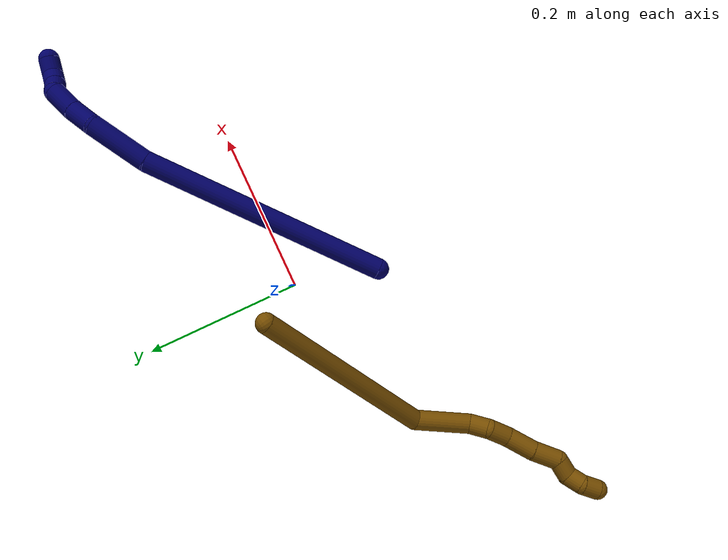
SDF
<sdf version="1.7">
 <world name="default">
  <model name="photoneo_s_sensor">
   <static>1</static>
   <pose>0 0 2 1.57079 1.57079 3.14159</pose>
   <link name="link">
    <inertial><mass>0.1</mass></inertial>
    <sensor name="sensor" type="depth">
     <update_rate>30</update_rate>
     <camera>
      <horizontal_fov>1.22</horizontal_fov>
      <image><width>1920</width><height>1200</height><format>B8G8R8</format></image>
      <clip><near>0.1</near><far>4</far></clip>
      <depth_camera><output>points</output></depth_camera>
     </camera>
     <plugin name="camera_plugin" filename="libgazebo_ros_depth_camera.so">
      <baseline>0.2</baseline>
      <alwaysOn>1</alwaysOn>
      <updateRate>0.0</updateRate>
      <cameraName>camera_ir</cameraName>
      <imageTopicName>/camera/color/image_raw</imageTopicName>
      <cameraInfoTopicName>/camera/color/camera_info</cameraInfoTopicName>
      <depthImageTopicName>/camera/depth/image_raw</depthImageTopicName>
      <depthImageCameraInfoTopicName>/camera/depth/camera_info</depthImageCameraInfoTopicName>
      <pointCloudTopicName>/camera/depth/points</pointCloudTopicName>
      <frameName>fr_optical</frameName>
      <pointCloudCutoff>0.1</pointCloudCutoff>
      <pointCloudCutoffMax>2.0</pointCloudCutoffMax>
      <distortionK1>0</distortionK1>
      <distortionK2>0</distortionK2>
      <distortionK3>0</distortionK3>
      <distortionT1>0</distortionT1>
      <distortionT2>0</distortionT2>
      <CxPrime>0</CxPrime>
      <Cx>0</Cx>
      <Cy>0</Cy>
      <focalLength>0</focalLength>
      <hackBaseline>0</hackBaseline>
     </plugin>
    </sensor>
   </link>
  </model>
  <model name="bin">
   <static>1</static>
   <link name="bottom">
    <collision name="collision-bottom">
     <pose>0 0 -0.01 0 -0 0</pose>
     <geometry><box><size>0.8 0.6 0.02</size></box></geometry>
     <surface>
      <friction><ode><mu>100</mu><mu2>100</mu2></ode></friction>
      <contact><collide_bitmask>65535</collide_bitmask></contact>
     </surface>
    </collision>
   </link>
   <link name="west_wall">
    <collision name="collision-west_wall">
     <pose>-0.41 0 0.1 0 -0 0</pose>
     <geometry><box><size>0.02 0.6 0.2</size></box></geometry>
     <surface>
      <friction><ode><mu>100</mu><mu2>100</mu2></ode></friction>
      <contact><collide_bitmask>65535</collide_bitmask></contact>
     </surface>
    </collision>
   </link>
   <link name="east_wall">
    <collision name="collision-east_wall">
     <pose>0.41 0 0.1 0 -0 0</pose>
     <geometry><box><size>0.02 0.6 0.2</size></box></geometry>
     <surface>
      <friction><ode><mu>100</mu><mu2>100</mu2></ode></friction>
      <contact><collide_bitmask>65535</collide_bitmask></contact>
     </surface>
    </collision>
   </link>
   <link name="south_wall">
    <collision name="collision-south_wall">
     <pose>0 -0.31 0.1 0 -0 0</pose>
     <geometry><box><size>0.8 0.02 0.2</size></box></geometry>
     <surface>
      <friction><ode><mu>100</mu><mu2>100</mu2></ode></friction>
      <contact><collide_bitmask>65535</collide_bitmask></contact>
     </surface>
    </collision>
   </link>
   <link name="north_wall">
    <collision name="collision-north_wall">
     <pose>0 0.31 0.1 0 -0 0</pose>
     <geometry><box><size>0.8 0.02 0.2</size></box></geometry>
     <surface>
      <friction><ode><mu>100</mu><mu2>100</mu2></ode></friction>
      <contact><collide_bitmask>65535</collide_bitmask></contact>
     </surface>
    </collision>
   </link>
  </model>
  <model name="7">
   <static>0</static>
   <link name="7">
    <collision name="collision-cylinder-e_1_1_4">
     <pose>0.01588 0.048446 0.139198 -0.334928 0.107326 -0.01816</pose>
     <geometry><cylinder><radius>0.0125</radius><length>0.296481</length></cylinder></geometry>
     <surface>
      <friction><ode><mu>1.16</mu><mu2>1.16</mu2><slip1>0</slip1><slip2>0</slip2></ode></friction>
      <contact><ode><kp>1e+06</kp><kd>1</kd><max_vel>0</max_vel><min_depth>0.001</min_depth></ode></contact>
     </surface>
    </collision>
    <visual name="visual-cylinder-e_1_1_4">
     <pose>0.01588 0.048446 0.139198 -0.334928 0.107326 -0.01816</pose>
     <geometry><cylinder><radius>0.0125</radius><length>0.296481</length></cylinder></geometry>
     <material><ambient>0.003922 0 0.403922 1</ambient></material>
    </visual>
    <collision name="collision-cylinder-e_2_4_5">
     <pose>0.03837 0.114327 0.310293 -0.50021 0.179891 -0.04607</pose>
     <geometry><cylinder><radius>0.0125</radius><length>0.073895</length></cylinder></geometry>
     <surface>
      <friction><ode><mu>1.16</mu><mu2>1.16</mu2><slip1>0</slip1><slip2>0</slip2></ode></friction>
      <contact><ode><kp>1e+06</kp><kd>1</kd><max_vel>0</max_vel><min_depth>0.001</min_depth></ode></contact>
     </surface>
    </collision>
    <visual name="visual-cylinder-e_2_4_5">
     <pose>0.03837 0.114327 0.310293 -0.50021 0.179891 -0.04607</pose>
     <geometry><cylinder><radius>0.0125</radius><length>0.073895</length></cylinder></geometry>
     <material><ambient>0.003922 0 0.403922 1</ambient></material>
    </visual>
    <collision name="collision-cylinder-e_3_5_6">
     <pose>0.043863 0.142936 0.353922 -0.761083 -0.068903 0.027573</pose>
     <geometry><cylinder><radius>0.0125</radius><length>0.03248</length></cylinder></geometry>
     <surface>
      <friction><ode><mu>1.16</mu><mu2>1.16</mu2><slip1>0</slip1><slip2>0</slip2></ode></friction>
      <contact><ode><kp>1e+06</kp><kd>1</kd><max_vel>0</max_vel><min_depth>0.001</min_depth></ode></contact>
     </surface>
    </collision>
    <visual name="visual-cylinder-e_3_5_6">
     <pose>0.043863 0.142936 0.353922 -0.761083 -0.068903 0.027573</pose>
     <geometry><cylinder><radius>0.0125</radius><length>0.03248</length></cylinder></geometry>
     <material><ambient>0.003922 0 0.403922 1</ambient></material>
    </visual>
    <collision name="collision-cylinder-e_4_6_7">
     <pose>0.043541 0.166935 0.377694 -0.816909 0.045246 -0.019585</pose>
     <geometry><cylinder><radius>0.0125</radius><length>0.035218</length></cylinder></geometry>
     <surface>
      <friction><ode><mu>1.16</mu><mu2>1.16</mu2><slip1>0</slip1><slip2>0</slip2></ode></friction>
      <contact><ode><kp>1e+06</kp><kd>1</kd><max_vel>0</max_vel><min_depth>0.001</min_depth></ode></contact>
     </surface>
    </collision>
    <visual name="visual-cylinder-e_4_6_7">
     <pose>0.043541 0.166935 0.377694 -0.816909 0.045246 -0.019585</pose>
     <geometry><cylinder><radius>0.0125</radius><length>0.035218</length></cylinder></geometry>
     <material><ambient>0.003922 0 0.403922 1</ambient></material>
    </visual>
    <collision name="collision-cylinder-e_5_7_8">
     <pose>0.041557 0.189562 0.390763 -1.46628 -0.274959 0.247919</pose>
     <geometry><cylinder><radius>0.0125</radius><length>0.020483</length></cylinder></geometry>
     <surface>
      <friction><ode><mu>1.16</mu><mu2>1.16</mu2><slip1>0</slip1><slip2>0</slip2></ode></friction>
      <contact><ode><kp>1e+06</kp><kd>1</kd><max_vel>0</max_vel><min_depth>0.001</min_depth></ode></contact>
     </surface>
    </collision>
    <visual name="visual-cylinder-e_5_7_8">
     <pose>0.041557 0.189562 0.390763 -1.46628 -0.274959 0.247919</pose>
     <geometry><cylinder><radius>0.0125</radius><length>0.020483</length></cylinder></geometry>
     <material><ambient>0.003922 0 0.403922 1</ambient></material>
    </visual>
    <collision name="collision-cylinder-e_6_8_9">
     <pose>0.037182 0.209501 0.39438 -1.32074 -0.151202 0.117527</pose>
     <geometry><cylinder><radius>0.0125</radius><length>0.021165</length></cylinder></geometry>
     <surface>
      <friction><ode><mu>1.16</mu><mu2>1.16</mu2><slip1>0</slip1><slip2>0</slip2></ode></friction>
      <contact><ode><kp>1e+06</kp><kd>1</kd><max_vel>0</max_vel><min_depth>0.001</min_depth></ode></contact>
     </surface>
    </collision>
    <visual name="visual-cylinder-e_6_8_9">
     <pose>0.037182 0.209501 0.39438 -1.32074 -0.151202 0.117527</pose>
     <geometry><cylinder><radius>0.0125</radius><length>0.021165</length></cylinder></geometry>
     <material><ambient>0.003922 0 0.403922 1</ambient></material>
    </visual>
    <collision name="collision-cylinder-e_7_9_2">
     <pose>0.040453 0.227858 0.400369 -1.1786 0.500452 -0.338465</pose>
     <geometry><cylinder><radius>0.0125</radius><length>0.020278</length></cylinder></geometry>
     <surface>
      <friction><ode><mu>1.16</mu><mu2>1.16</mu2><slip1>0</slip1><slip2>0</slip2></ode></friction>
      <contact><ode><kp>1e+06</kp><kd>1</kd><max_vel>0</max_vel><min_depth>0.001</min_depth></ode></contact>
     </surface>
    </collision>
    <visual name="visual-cylinder-e_7_9_2">
     <pose>0.040453 0.227858 0.400369 -1.1786 0.500452 -0.338465</pose>
     <geometry><cylinder><radius>0.0125</radius><length>0.020278</length></cylinder></geometry>
     <material><ambient>0.003922 0 0.403922 1</ambient></material>
    </visual>
    <collision name="collision-sphere-2">
     <pose>0.045318 0.236078 0.403769 0 -0 0</pose>
     <geometry><sphere><radius>0.0125</radius></sphere></geometry>
     <surface>
      <friction><ode><mu>1.16</mu><mu2>1.16</mu2><slip1>0</slip1><slip2>0</slip2></ode></friction>
      <contact><ode><kp>1e+06</kp><kd>1</kd><max_vel>0</max_vel><min_depth>0.001</min_depth></ode></contact>
     </surface>
    </collision>
    <visual name="visual-sphere-2">
     <pose>0.045318 0.236078 0.403769 0 -0 0</pose>
     <geometry><sphere><radius>0.0125</radius></sphere></geometry>
     <material><ambient>0.003922 0 0.403922 1</ambient></material>
    </visual>
    <collision name="collision-sphere-9">
     <pose>0.035588 0.219637 0.396969 0 -0 0</pose>
     <geometry><sphere><radius>0.0125</radius></sphere></geometry>
     <surface>
      <friction><ode><mu>1.16</mu><mu2>1.16</mu2><slip1>0</slip1><slip2>0</slip2></ode></friction>
      <contact><ode><kp>1e+06</kp><kd>1</kd><max_vel>0</max_vel><min_depth>0.001</min_depth></ode></contact>
     </surface>
    </collision>
    <visual name="visual-sphere-9">
     <pose>0.035588 0.219637 0.396969 0 -0 0</pose>
     <geometry><sphere><radius>0.0125</radius></sphere></geometry>
     <material><ambient>0.003922 0 0.403922 1</ambient></material>
    </visual>
    <collision name="collision-sphere-4">
     <pose>0.031759 0.096893 0.278396 0 -0 0</pose>
     <geometry><sphere><radius>0.0125</radius></sphere></geometry>
     <surface>
      <friction><ode><mu>1.16</mu><mu2>1.16</mu2><slip1>0</slip1><slip2>0</slip2></ode></friction>
      <contact><ode><kp>1e+06</kp><kd>1</kd><max_vel>0</max_vel><min_depth>0.001</min_depth></ode></contact>
     </surface>
    </collision>
    <visual name="visual-sphere-4">
     <pose>0.031759 0.096893 0.278396 0 -0 0</pose>
     <geometry><sphere><radius>0.0125</radius></sphere></geometry>
     <material><ambient>0.003922 0 0.403922 1</ambient></material>
    </visual>
    <collision name="collision-sphere-1">
     <geometry><sphere><radius>0.0125</radius></sphere></geometry>
     <surface>
      <friction><ode><mu>1.16</mu><mu2>1.16</mu2><slip1>0</slip1><slip2>0</slip2></ode></friction>
      <contact><ode><kp>1e+06</kp><kd>1</kd><max_vel>0</max_vel><min_depth>0.001</min_depth></ode></contact>
     </surface>
    </collision>
    <visual name="visual-sphere-1">
     <geometry><sphere><radius>0.0125</radius></sphere></geometry>
     <material><ambient>0.003922 0 0.403922 1</ambient></material>
    </visual>
    <collision name="collision-sphere-8">
     <pose>0.038776 0.199365 0.391791 0 -0 0</pose>
     <geometry><sphere><radius>0.0125</radius></sphere></geometry>
     <surface>
      <friction><ode><mu>1.16</mu><mu2>1.16</mu2><slip1>0</slip1><slip2>0</slip2></ode></friction>
      <contact><ode><kp>1e+06</kp><kd>1</kd><max_vel>0</max_vel><min_depth>0.001</min_depth></ode></contact>
     </surface>
    </collision>
    <visual name="visual-sphere-8">
     <pose>0.038776 0.199365 0.391791 0 -0 0</pose>
     <geometry><sphere><radius>0.0125</radius></sphere></geometry>
     <material><ambient>0.003922 0 0.403922 1</ambient></material>
    </visual>
    <collision name="collision-sphere-5">
     <pose>0.044981 0.131762 0.342191 0 -0 0</pose>
     <geometry><sphere><radius>0.0125</radius></sphere></geometry>
     <surface>
      <friction><ode><mu>1.16</mu><mu2>1.16</mu2><slip1>0</slip1><slip2>0</slip2></ode></friction>
      <contact><ode><kp>1e+06</kp><kd>1</kd><max_vel>0</max_vel><min_depth>0.001</min_depth></ode></contact>
     </surface>
    </collision>
    <visual name="visual-sphere-5">
     <pose>0.044981 0.131762 0.342191 0 -0 0</pose>
     <geometry><sphere><radius>0.0125</radius></sphere></geometry>
     <material><ambient>0.003922 0 0.403922 1</ambient></material>
    </visual>
    <collision name="collision-sphere-6">
     <pose>0.042744 0.15411 0.365653 0 -0 0</pose>
     <geometry><sphere><radius>0.0125</radius></sphere></geometry>
     <surface>
      <friction><ode><mu>1.16</mu><mu2>1.16</mu2><slip1>0</slip1><slip2>0</slip2></ode></friction>
      <contact><ode><kp>1e+06</kp><kd>1</kd><max_vel>0</max_vel><min_depth>0.001</min_depth></ode></contact>
     </surface>
    </collision>
    <visual name="visual-sphere-6">
     <pose>0.042744 0.15411 0.365653 0 -0 0</pose>
     <geometry><sphere><radius>0.0125</radius></sphere></geometry>
     <material><ambient>0.003922 0 0.403922 1</ambient></material>
    </visual>
    <collision name="collision-sphere-7">
     <pose>0.044337 0.179759 0.389735 0 -0 0</pose>
     <geometry><sphere><radius>0.0125</radius></sphere></geometry>
     <surface>
      <friction><ode><mu>1.16</mu><mu2>1.16</mu2><slip1>0</slip1><slip2>0</slip2></ode></friction>
      <contact><ode><kp>1e+06</kp><kd>1</kd><max_vel>0</max_vel><min_depth>0.001</min_depth></ode></contact>
     </surface>
    </collision>
    <visual name="visual-sphere-7">
     <pose>0.044337 0.179759 0.389735 0 -0 0</pose>
     <geometry><sphere><radius>0.0125</radius></sphere></geometry>
     <material><ambient>0.003922 0 0.403922 1</ambient></material>
    </visual>
    <inertial>
     <pose>0.02592 0.092541 0.226931 0 -0 0</pose>
     <mass>0.5</mass>
     <inertia>
      <ixx>0.002182</ixx>
      <ixy>0</ixy>
      <ixz>0</ixz>
      <iyy>0.002081</iyy>
      <iyz>0</iyz>
      <izz>-0.00095</izz>
     </inertia>
    </inertial>
   </link>
   <pose>-0.024865 -0.099165 0.079651 -1.24587 -0.846374 -0.788147</pose>
  </model>
  <model name="12">
   <static>0</static>
   <link name="12">
    <collision name="collision-cylinder-e_1_1_4">
     <pose>-0.062215 -0.094148 0.048401 1.09593 -0.53133 -0.329124</pose>
     <geometry><cylinder><radius>0.0125</radius><length>0.245578</length></cylinder></geometry>
     <surface>
      <friction><ode><mu>1.16</mu><mu2>1.16</mu2><slip1>0</slip1><slip2>0</slip2></ode></friction>
      <contact><ode><kp>1e+06</kp><kd>1</kd><max_vel>0</max_vel><min_depth>0.001</min_depth></ode></contact>
     </surface>
    </collision>
    <visual name="visual-cylinder-e_1_1_4">
     <pose>-0.062215 -0.094148 0.048401 1.09593 -0.53133 -0.329124</pose>
     <geometry><cylinder><radius>0.0125</radius><length>0.245578</length></cylinder></geometry>
     <material><ambient>0.466667 0.301961 0 1</ambient></material>
    </visual>
    <collision name="collision-cylinder-e_2_4_5">
     <pose>-0.144376 -0.197464 0.123726 0.328222 -0.611605 -0.104467</pose>
     <geometry><cylinder><radius>0.0125</radius><length>0.069477</length></cylinder></geometry>
     <surface>
      <friction><ode><mu>1.16</mu><mu2>1.16</mu2><slip1>0</slip1><slip2>0</slip2></ode></friction>
      <contact><ode><kp>1e+06</kp><kd>1</kd><max_vel>0</max_vel><min_depth>0.001</min_depth></ode></contact>
     </surface>
    </collision>
    <visual name="visual-cylinder-e_2_4_5">
     <pose>-0.144376 -0.197464 0.123726 0.328222 -0.611605 -0.104467</pose>
     <geometry><cylinder><radius>0.0125</radius><length>0.069477</length></cylinder></geometry>
     <material><ambient>0.466667 0.301961 0 1</ambient></material>
    </visual>
    <collision name="collision-cylinder-e_3_5_6">
     <pose>-0.17476 -0.205655 0.157463 -0.142451 -0.987768 0.076786</pose>
     <geometry><cylinder><radius>0.0125</radius><length>0.025008</length></cylinder></geometry>
     <surface>
      <friction><ode><mu>1.16</mu><mu2>1.16</mu2><slip1>0</slip1><slip2>0</slip2></ode></friction>
      <contact><ode><kp>1e+06</kp><kd>1</kd><max_vel>0</max_vel><min_depth>0.001</min_depth></ode></contact>
     </surface>
    </collision>
    <visual name="visual-cylinder-e_3_5_6">
     <pose>-0.17476 -0.205655 0.157463 -0.142451 -0.987768 0.076786</pose>
     <geometry><cylinder><radius>0.0125</radius><length>0.025008</length></cylinder></geometry>
     <material><ambient>0.466667 0.301961 0 1</ambient></material>
    </visual>
    <collision name="collision-cylinder-e_4_6_7">
     <pose>-0.193841 -0.211416 0.171454 0.753978 -0.720423 -0.296065</pose>
     <geometry><cylinder><radius>0.0125</radius><length>0.026199</length></cylinder></geometry>
     <surface>
      <friction><ode><mu>1.16</mu><mu2>1.16</mu2><slip1>0</slip1><slip2>0</slip2></ode></friction>
      <contact><ode><kp>1e+06</kp><kd>1</kd><max_vel>0</max_vel><min_depth>0.001</min_depth></ode></contact>
     </surface>
    </collision>
    <visual name="visual-cylinder-e_4_6_7">
     <pose>-0.193841 -0.211416 0.171454 0.753978 -0.720423 -0.296065</pose>
     <geometry><cylinder><radius>0.0125</radius><length>0.026199</length></cylinder></geometry>
     <material><ambient>0.466667 0.301961 0 1</ambient></material>
    </visual>
    <collision name="collision-cylinder-e_5_7_8">
     <pose>-0.217486 -0.224655 0.18672 0.676816 -0.965725 -0.364915</pose>
     <geometry><cylinder><radius>0.0125</radius><length>0.036485</length></cylinder></geometry>
     <surface>
      <friction><ode><mu>1.16</mu><mu2>1.16</mu2><slip1>0</slip1><slip2>0</slip2></ode></friction>
      <contact><ode><kp>1e+06</kp><kd>1</kd><max_vel>0</max_vel><min_depth>0.001</min_depth></ode></contact>
     </surface>
    </collision>
    <visual name="visual-cylinder-e_5_7_8">
     <pose>-0.217486 -0.224655 0.18672 0.676816 -0.965725 -0.364915</pose>
     <geometry><cylinder><radius>0.0125</radius><length>0.036485</length></cylinder></geometry>
     <material><ambient>0.466667 0.301961 0 1</ambient></material>
    </visual>
    <collision name="collision-cylinder-e_6_8_9">
     <pose>-0.244971 -0.236598 0.2042 0.525455 -0.854985 -0.243841</pose>
     <geometry><cylinder><radius>0.0125</radius><length>0.033081</length></cylinder></geometry>
     <surface>
      <friction><ode><mu>1.16</mu><mu2>1.16</mu2><slip1>0</slip1><slip2>0</slip2></ode></friction>
      <contact><ode><kp>1e+06</kp><kd>1</kd><max_vel>0</max_vel><min_depth>0.001</min_depth></ode></contact>
     </surface>
    </collision>
    <visual name="visual-cylinder-e_6_8_9">
     <pose>-0.244971 -0.236598 0.2042 0.525455 -0.854985 -0.243841</pose>
     <geometry><cylinder><radius>0.0125</radius><length>0.033081</length></cylinder></geometry>
     <material><ambient>0.466667 0.301961 0 1</ambient></material>
    </visual>
    <collision name="collision-cylinder-e_7_9_10">
     <pose>-0.266856 -0.248585 0.213282 1.61774 -0.9625 -1.00155</pose>
     <geometry><cylinder><radius>0.0125</radius><length>0.02292</length></cylinder></geometry>
     <surface>
      <friction><ode><mu>1.16</mu><mu2>1.16</mu2><slip1>0</slip1><slip2>0</slip2></ode></friction>
      <contact><ode><kp>1e+06</kp><kd>1</kd><max_vel>0</max_vel><min_depth>0.001</min_depth></ode></contact>
     </surface>
    </collision>
    <visual name="visual-cylinder-e_7_9_10">
     <pose>-0.266856 -0.248585 0.213282 1.61774 -0.9625 -1.00155</pose>
     <geometry><cylinder><radius>0.0125</radius><length>0.02292</length></cylinder></geometry>
     <material><ambient>0.466667 0.301961 0 1</ambient></material>
    </visual>
    <collision name="collision-cylinder-e_8_10_11">
     <pose>-0.285754 -0.25624 0.216221 0.330203 -1.22394 -0.232827</pose>
     <geometry><cylinder><radius>0.0125</radius><length>0.02019</length></cylinder></geometry>
     <surface>
      <friction><ode><mu>1.16</mu><mu2>1.16</mu2><slip1>0</slip1><slip2>0</slip2></ode></friction>
      <contact><ode><kp>1e+06</kp><kd>1</kd><max_vel>0</max_vel><min_depth>0.001</min_depth></ode></contact>
     </surface>
    </collision>
    <visual name="visual-cylinder-e_8_10_11">
     <pose>-0.285754 -0.25624 0.216221 0.330203 -1.22394 -0.232827</pose>
     <geometry><cylinder><radius>0.0125</radius><length>0.02019</length></cylinder></geometry>
     <material><ambient>0.466667 0.301961 0 1</ambient></material>
    </visual>
    <collision name="collision-cylinder-e_9_11_2">
     <pose>-0.302232 -0.262004 0.22583 0.631307 -0.725138 -0.246507</pose>
     <geometry><cylinder><radius>0.0125</radius><length>0.021061</length></cylinder></geometry>
     <surface>
      <friction><ode><mu>1.16</mu><mu2>1.16</mu2><slip1>0</slip1><slip2>0</slip2></ode></friction>
      <contact><ode><kp>1e+06</kp><kd>1</kd><max_vel>0</max_vel><min_depth>0.001</min_depth></ode></contact>
     </surface>
    </collision>
    <visual name="visual-cylinder-e_9_11_2">
     <pose>-0.302232 -0.262004 0.22583 0.631307 -0.725138 -0.246507</pose>
     <geometry><cylinder><radius>0.0125</radius><length>0.021061</length></cylinder></geometry>
     <material><ambient>0.466667 0.301961 0 1</ambient></material>
    </visual>
    <collision name="collision-sphere-2">
     <pose>-0.309217 -0.266655 0.232192 0 -0 0</pose>
     <geometry><sphere><radius>0.0125</radius></sphere></geometry>
     <surface>
      <friction><ode><mu>1.16</mu><mu2>1.16</mu2><slip1>0</slip1><slip2>0</slip2></ode></friction>
      <contact><ode><kp>1e+06</kp><kd>1</kd><max_vel>0</max_vel><min_depth>0.001</min_depth></ode></contact>
     </surface>
    </collision>
    <visual name="visual-sphere-2">
     <pose>-0.309217 -0.266655 0.232192 0 -0 0</pose>
     <geometry><sphere><radius>0.0125</radius></sphere></geometry>
     <material><ambient>0.466667 0.301961 0 1</ambient></material>
    </visual>
    <collision name="collision-sphere-11">
     <pose>-0.295248 -0.257352 0.219468 0 -0 0</pose>
     <geometry><sphere><radius>0.0125</radius></sphere></geometry>
     <surface>
      <friction><ode><mu>1.16</mu><mu2>1.16</mu2><slip1>0</slip1><slip2>0</slip2></ode></friction>
      <contact><ode><kp>1e+06</kp><kd>1</kd><max_vel>0</max_vel><min_depth>0.001</min_depth></ode></contact>
     </surface>
    </collision>
    <visual name="visual-sphere-11">
     <pose>-0.295248 -0.257352 0.219468 0 -0 0</pose>
     <geometry><sphere><radius>0.0125</radius></sphere></geometry>
     <material><ambient>0.466667 0.301961 0 1</ambient></material>
    </visual>
    <collision name="collision-sphere-10">
     <pose>-0.276261 -0.255127 0.212975 0 -0 0</pose>
     <geometry><sphere><radius>0.0125</radius></sphere></geometry>
     <surface>
      <friction><ode><mu>1.16</mu><mu2>1.16</mu2><slip1>0</slip1><slip2>0</slip2></ode></friction>
      <contact><ode><kp>1e+06</kp><kd>1</kd><max_vel>0</max_vel><min_depth>0.001</min_depth></ode></contact>
     </surface>
    </collision>
    <visual name="visual-sphere-10">
     <pose>-0.276261 -0.255127 0.212975 0 -0 0</pose>
     <geometry><sphere><radius>0.0125</radius></sphere></geometry>
     <material><ambient>0.466667 0.301961 0 1</ambient></material>
    </visual>
    <collision name="collision-sphere-9">
     <pose>-0.257452 -0.242043 0.21359 0 -0 0</pose>
     <geometry><sphere><radius>0.0125</radius></sphere></geometry>
     <surface>
      <friction><ode><mu>1.16</mu><mu2>1.16</mu2><slip1>0</slip1><slip2>0</slip2></ode></friction>
      <contact><ode><kp>1e+06</kp><kd>1</kd><max_vel>0</max_vel><min_depth>0.001</min_depth></ode></contact>
     </surface>
    </collision>
    <visual name="visual-sphere-9">
     <pose>-0.257452 -0.242043 0.21359 0 -0 0</pose>
     <geometry><sphere><radius>0.0125</radius></sphere></geometry>
     <material><ambient>0.466667 0.301961 0 1</ambient></material>
    </visual>
    <collision name="collision-sphere-4">
     <pose>-0.12443 -0.188295 0.096803 0 -0 0</pose>
     <geometry><sphere><radius>0.0125</radius></sphere></geometry>
     <surface>
      <friction><ode><mu>1.16</mu><mu2>1.16</mu2><slip1>0</slip1><slip2>0</slip2></ode></friction>
      <contact><ode><kp>1e+06</kp><kd>1</kd><max_vel>0</max_vel><min_depth>0.001</min_depth></ode></contact>
     </surface>
    </collision>
    <visual name="visual-sphere-4">
     <pose>-0.12443 -0.188295 0.096803 0 -0 0</pose>
     <geometry><sphere><radius>0.0125</radius></sphere></geometry>
     <material><ambient>0.466667 0.301961 0 1</ambient></material>
    </visual>
    <collision name="collision-sphere-1">
     <geometry><sphere><radius>0.0125</radius></sphere></geometry>
     <surface>
      <friction><ode><mu>1.16</mu><mu2>1.16</mu2><slip1>0</slip1><slip2>0</slip2></ode></friction>
      <contact><ode><kp>1e+06</kp><kd>1</kd><max_vel>0</max_vel><min_depth>0.001</min_depth></ode></contact>
     </surface>
    </collision>
    <visual name="visual-sphere-1">
     <geometry><sphere><radius>0.0125</radius></sphere></geometry>
     <material><ambient>0.466667 0.301961 0 1</ambient></material>
    </visual>
    <collision name="collision-sphere-8">
     <pose>-0.23249 -0.231154 0.194809 0 -0 0</pose>
     <geometry><sphere><radius>0.0125</radius></sphere></geometry>
     <surface>
      <friction><ode><mu>1.16</mu><mu2>1.16</mu2><slip1>0</slip1><slip2>0</slip2></ode></friction>
      <contact><ode><kp>1e+06</kp><kd>1</kd><max_vel>0</max_vel><min_depth>0.001</min_depth></ode></contact>
     </surface>
    </collision>
    <visual name="visual-sphere-8">
     <pose>-0.23249 -0.231154 0.194809 0 -0 0</pose>
     <geometry><sphere><radius>0.0125</radius></sphere></geometry>
     <material><ambient>0.466667 0.301961 0 1</ambient></material>
    </visual>
    <collision name="collision-sphere-5">
     <pose>-0.164322 -0.206632 0.150649 0 -0 0</pose>
     <geometry><sphere><radius>0.0125</radius></sphere></geometry>
     <surface>
      <friction><ode><mu>1.16</mu><mu2>1.16</mu2><slip1>0</slip1><slip2>0</slip2></ode></friction>
      <contact><ode><kp>1e+06</kp><kd>1</kd><max_vel>0</max_vel><min_depth>0.001</min_depth></ode></contact>
     </surface>
    </collision>
    <visual name="visual-sphere-5">
     <pose>-0.164322 -0.206632 0.150649 0 -0 0</pose>
     <geometry><sphere><radius>0.0125</radius></sphere></geometry>
     <material><ambient>0.466667 0.301961 0 1</ambient></material>
    </visual>
    <collision name="collision-sphere-6">
     <pose>-0.185199 -0.204677 0.164278 0 -0 0</pose>
     <geometry><sphere><radius>0.0125</radius></sphere></geometry>
     <surface>
      <friction><ode><mu>1.16</mu><mu2>1.16</mu2><slip1>0</slip1><slip2>0</slip2></ode></friction>
      <contact><ode><kp>1e+06</kp><kd>1</kd><max_vel>0</max_vel><min_depth>0.001</min_depth></ode></contact>
     </surface>
    </collision>
    <visual name="visual-sphere-6">
     <pose>-0.185199 -0.204677 0.164278 0 -0 0</pose>
     <geometry><sphere><radius>0.0125</radius></sphere></geometry>
     <material><ambient>0.466667 0.301961 0 1</ambient></material>
    </visual>
    <collision name="collision-sphere-7">
     <pose>-0.202483 -0.218156 0.178631 0 -0 0</pose>
     <geometry><sphere><radius>0.0125</radius></sphere></geometry>
     <surface>
      <friction><ode><mu>1.16</mu><mu2>1.16</mu2><slip1>0</slip1><slip2>0</slip2></ode></friction>
      <contact><ode><kp>1e+06</kp><kd>1</kd><max_vel>0</max_vel><min_depth>0.001</min_depth></ode></contact>
     </surface>
    </collision>
    <visual name="visual-sphere-7">
     <pose>-0.202483 -0.218156 0.178631 0 -0 0</pose>
     <geometry><sphere><radius>0.0125</radius></sphere></geometry>
     <material><ambient>0.466667 0.301961 0 1</ambient></material>
    </visual>
    <inertial>
     <pose>-0.138097 -0.159869 0.11298 0 -0 0</pose>
     <mass>0.5</mass>
     <inertia>
      <ixx>0.000674</ixx>
      <ixy>0</ixy>
      <ixz>0</ixz>
      <iyy>0.000393</iyy>
      <iyz>0</iyz>
      <izz>0.001649</izz>
     </inertia>
    </inertial>
   </link>
   <pose>-0.026143 0.042854 0.133753 1.80211 0.525446 0.279801</pose>
  </model>
 </world>
</sdf>
